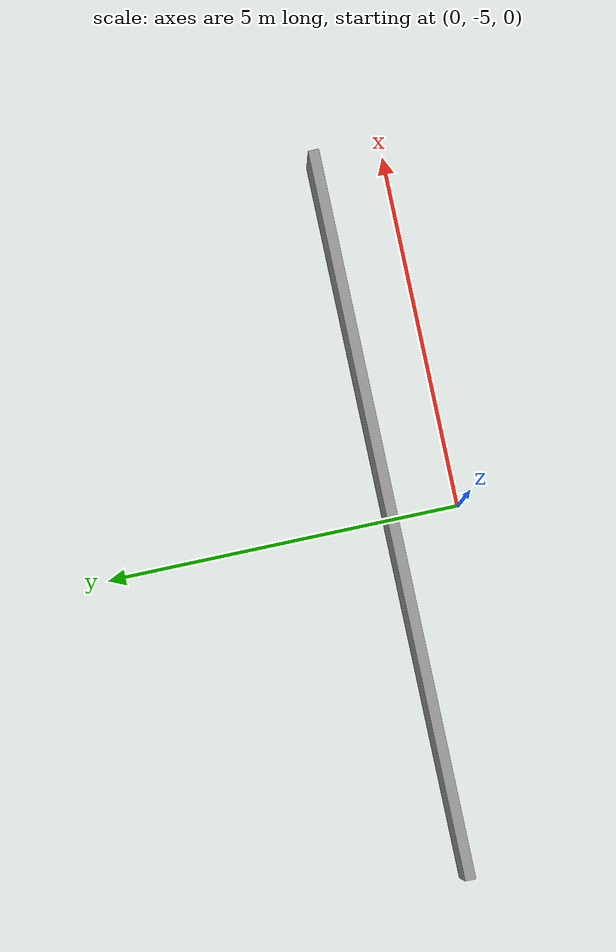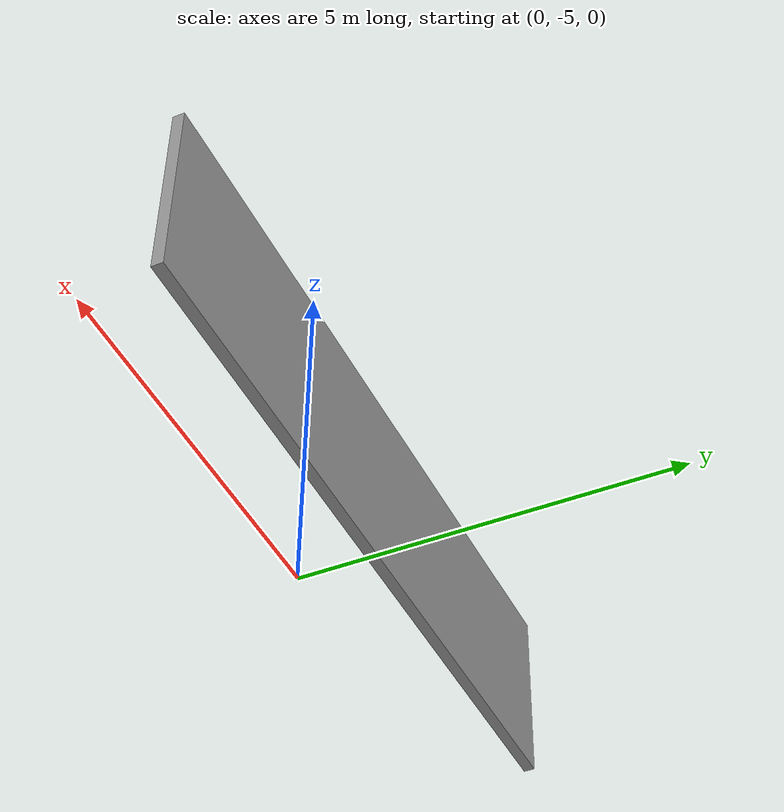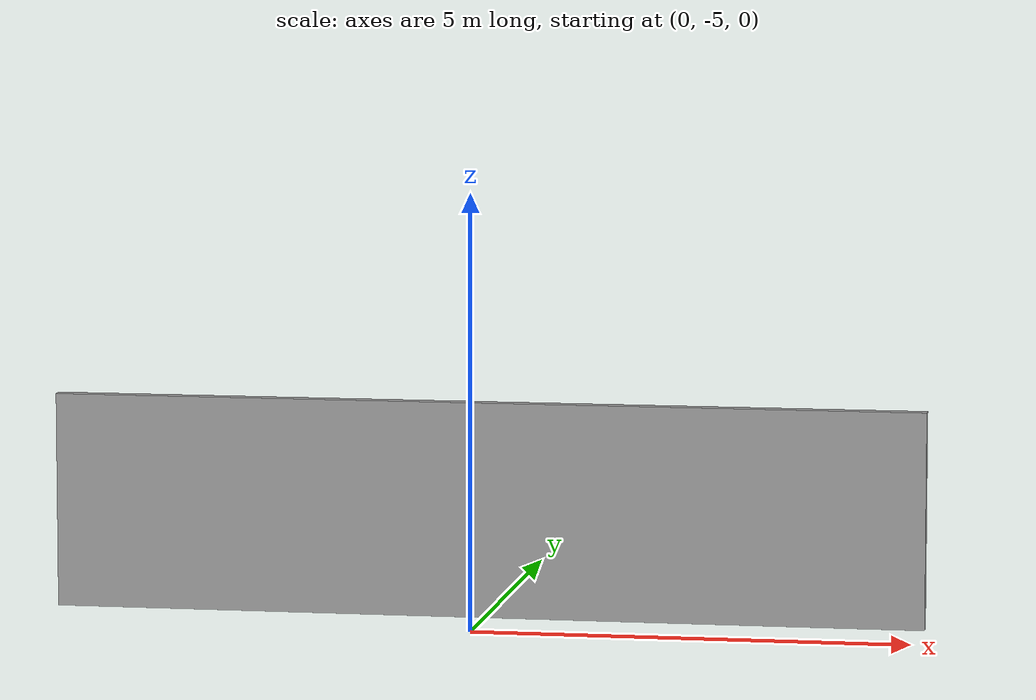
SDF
<?xml version='1.0'?>
<sdf version='1.6'>
  <model name='service_wall3'>
    <pose frame=''>0 -4 0 0 -0 0</pose>
    <link name='Wall_23'>
      <collision name='Wall_23_Collision'>
        <geometry>
          <box>
            <size>10.15 0.15 2.5</size>
          </box>
        </geometry>
        <pose frame=''>0 0 1.25 0 -0 0</pose>
      </collision>
      <visual name='Wall_23_Visual'>
        <pose frame=''>0 0 1.25 0 -0 0</pose>
        <geometry>
          <box>
            <size>10.15 0.15 2.5</size>
          </box>
        </geometry>
        <material>
          <script>
            <uri>file://media/materials/scripts/gazebo.material</uri>
            <name>Gazebo/Grey</name>
          </script>
          <ambient>1 1 1 1</ambient>
        </material>
        <meta>
          <layer>0</layer>
        </meta>
      </visual>
      <pose frame=''>0 -0 0 0 -0 3.14159</pose>
    </link>
    <static>1</static>
  </model>
</sdf>
